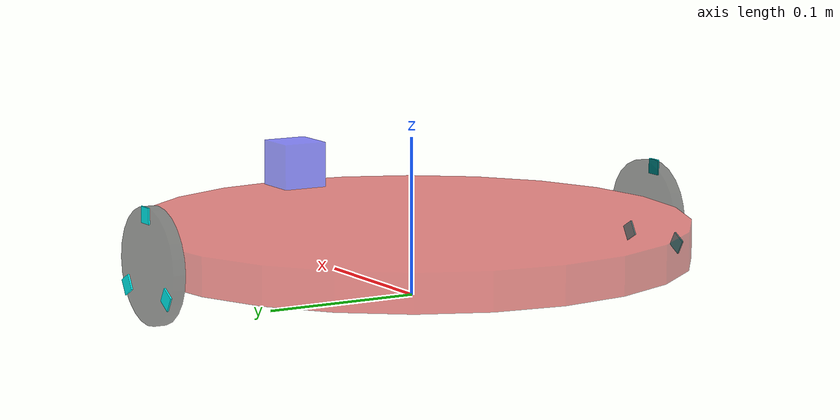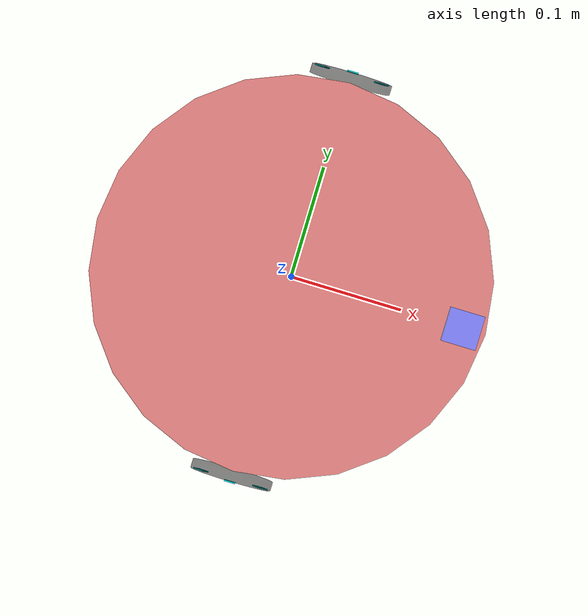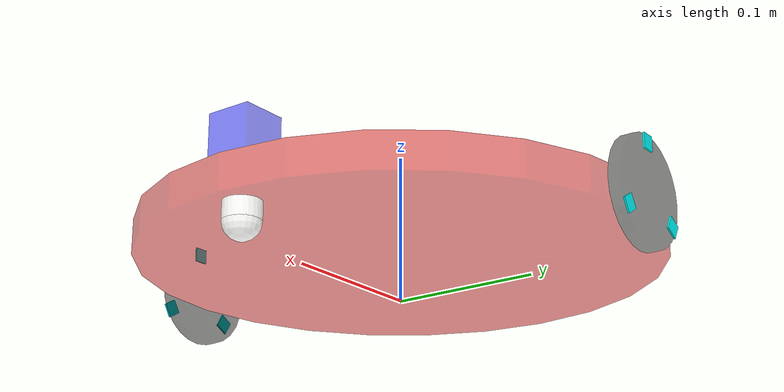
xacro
<?xml version="1.0"?>
<robot name="three_wheeled_car"
    xmlns:xacro="http://www.ros.org/wiki/xacro">

    <xacro:property name="wheel_diameter" value="0.072" />
    <xacro:property name="wheel_length" value="0.008" />
    <xacro:property name="wheel_radius" value="${wheel_diameter/2}" />
    <xacro:property name="base_height" value="${wheel_diameter/3}" />
    <xacro:property name="base_radius" value="0.175" />
    <xacro:property name="indicator_length" value="0.01" />
    <xacro:property name="indicator_depth" value="0.001" />
    <xacro:property name="head_length" value="0.03" />
    <xacro:property name="passive_wheel_radius" value="0.012" />

    <xacro:property name="base_mass" value="0.2" />
    <xacro:property name="head_mass" value="0.02" />
    <xacro:property name="wheel_mass" value="0.025" />
    <xacro:property name="passive_wheel_mass" value="0.01" />
    <xacro:property name="passive_wheel_holder_mass" value="0.015" />

    <xacro:macro name="cylinder_inertia" params="m r h">
        <inertia ixx="${m*(3*r*r + h*h)/12}" ixy="0.0" ixz="0.0" iyy="${m*(3*r*r + h*h)/12}" iyz="0.0" izz="${m*r*r/2}" />
    </xacro:macro>

    <xacro:macro name="sphere_inertia" params="m r">
        <inertia ixx="${m*r*r*2/5}" ixy="0.0" ixz="0.0" iyy="${m*r*r*2/5}" iyz="0.0" izz="${m*r*r*2/5}" />
    </xacro:macro>

    <xacro:macro name="cube_inertia" params="m h">
        <inertia ixx="${m*h*h/6}" ixy="0.0" ixz="0.0" iyy="${m*h*h/6}" iyz="0.0" izz="${m*h*h/6}" />
    </xacro:macro>

    <link name="base_link">
        <visual>
            <geometry>
                <cylinder length="${base_height}" radius="${base_radius}"/>
            </geometry>
            <material name="red">
                <color rgba="0.8 0 0 0.5"/>
            </material>
        </visual>
        <collision>
            <geometry>
                <cylinder length="${base_height}" radius="${base_radius}"/>
            </geometry>
        </collision>
        <inertial>
            <mass value="${base_mass}" />
            <origin rpy="0 0 0" />
            <xacro:cylinder_inertia m="${base_mass}" r="${base_radius}" h="${base_height}" />
        </inertial>
    </link>

    <link name="base_footprint">
    </link>
    <joint name="footprint_to_base" type="fixed">
        <parent link="base_footprint"/>
        <child link="base_link"/>
        <origin xyz="0 0 ${wheel_radius}" rpy="0 0 0"/>
    </joint>

    <xacro:macro name="wheel" params="wheel">
        <link name="${wheel}_wheel">
            <visual>
                <geometry>
                    <cylinder length="${wheel_length}" radius="${wheel_radius}"/>
                </geometry>
                <material name="black">
                    <color rgba="0 0 0 0.5"/>
                </material>
            </visual>
            <collision>
                <geometry>
                    <cylinder length="${wheel_length}" radius="${wheel_radius}"/>
                </geometry>
            </collision>
            <inertial>
                <mass value="${wheel_mass}" />
                <origin rpy="0 0 0" />
                <xacro:cylinder_inertia m="${wheel_mass}" r="${wheel_radius}" h="${wheel_length}" />
            </inertial>
        </link>
    </xacro:macro>

    <xacro:wheel wheel="right"/>
    <xacro:wheel wheel="left"/>

    <xacro:macro name="wheel_joint" params="wheel y">
        <joint name="base_to_${wheel}_wheel" type="continuous">
            <parent link="base_link" />
            <child link="${wheel}_wheel" />
            <origin xyz="0 ${y} 0" rpy="-1.57 0 0" />
            <axis xyz="0 0 1" />
        </joint>
    </xacro:macro>

    <xacro:wheel_joint wheel="right" y="${-(base_radius + wheel_length/2)}" />
    <xacro:wheel_joint wheel="left" y="${base_radius + wheel_length/2}" />

    <link name="head">
        <visual>
            <geometry>
                <box size="${head_length} ${head_length} ${head_length}"/>
            </geometry>
            <material name="blue">
                <color rgba="0 0 1 0.5"/>
            </material>
        </visual>
        <collision>
            <geometry>
                <box size="${head_length} ${head_length} ${head_length}"/>
            </geometry>
        </collision>
        <inertial>
            <mass value="${head_mass}" />
            <origin rpy="0 0 0" />
            <xacro:cube_inertia m="${head_mass}" h="${head_length}" />
        </inertial>
    </link>

    <joint name="base_to_head" type="fixed">
        <parent link="base_link"/>
        <child link="head"/>
        <origin xyz="${base_radius - head_length/2 - head_length/5} 0 ${(base_height + head_length)/2}" rpy="0 0 0"/>
    </joint>

    <link name="passive_wheel_holder">
        <visual>
            <geometry>
                <cylinder length="${base_height - passive_wheel_radius}" radius="${passive_wheel_radius}"/>
            </geometry>
            <material name="white">
                <color rgba="1 1 1 0.5"/>
            </material>
        </visual>
        <collision>
            <geometry>
                <cylinder length="${base_height - passive_wheel_radius}" radius="${passive_wheel_radius}"/>
            </geometry>
        </collision>
        <inertial>
            <mass value="${passive_wheel_holder_mass}" />
            <origin rpy="0 0 0" />
            <xacro:cylinder_inertia m="${passive_wheel_holder_mass}" r="${passive_wheel_radius}" h="${base_height - passive_wheel_radius}" />
        </inertial>
    </link>

    <joint name="base_to_passive_wheel_holder" type="fixed">
        <parent link="base_link"/>
        <child link="passive_wheel_holder"/>
        <origin xyz="${base_radius - head_length/2 - head_length/5} 0 ${-(base_height - passive_wheel_radius/2)}" rpy="0 0 0"/>
    </joint>

    <link name="passive_wheel">
        <visual>
            <geometry>
                <sphere radius="${passive_wheel_radius}"/>
            </geometry>
            <material name="white">
                <color rgba="1 1 1 0.5"/>
            </material>
        </visual>
        <collision>
            <geometry>
                <sphere radius="${passive_wheel_radius}"/>
            </geometry>
        </collision>
        <inertial>
            <mass value="${passive_wheel_mass}" />
            <origin rpy="0 0 0" />
            <xacro:sphere_inertia m="${passive_wheel_mass}" r="${passive_wheel_radius}" />
        </inertial>
    </link>

    <joint name="passive_wheel_holder_to_passive_wheel" type="fixed">
        <parent link="passive_wheel_holder"/>
        <child link="passive_wheel"/>
        <origin xyz="0 0 ${(-(base_height - passive_wheel_radius)/2)}" rpy="0 0 0"/>
    </joint>

    <xacro:macro name="wheel_indicator" params="wheel number">
        <link name="${wheel}_wheel_indicator_${number}">
            <visual>
                <geometry>
                    <box size="${indicator_length} ${indicator_length} ${indicator_depth}"/>
                </geometry>
                <material name="cyan">
                    <color rgba="0 1 1 1" />
                </material>
            </visual>
        </link>
    </xacro:macro>

    <xacro:wheel_indicator wheel="left" number="1" />
    <xacro:wheel_indicator wheel="left" number="2" />
    <xacro:wheel_indicator wheel="left" number="3" />
    <xacro:wheel_indicator wheel="right" number="1" />
    <xacro:wheel_indicator wheel="right" number="2" />
    <xacro:wheel_indicator wheel="right" number="3" />

    <xacro:macro name="wheel_indicator_joint" params="wheel number x y z yaw">
        <joint name="${wheel}_wheel_to_${wheel}_wheel_indicator_${number}" type="fixed">
            <parent link="${wheel}_wheel" />
            <child link="${wheel}_wheel_indicator_${number}" />
            <origin xyz="${x} ${y} ${z}" rpy="0 0 ${yaw}" />
        </joint>
    </xacro:macro>

    <xacro:wheel_indicator_joint wheel="left" number="1" x="0" y="${-(wheel_radius - indicator_length/2)}" z="${wheel_length/2 + indicator_depth/2}" yaw="0" />
    <xacro:wheel_indicator_joint wheel="left" number="2" x="${(wheel_radius - indicator_length/2)*sin(pi/3)}" y="${(wheel_radius - indicator_length/2)*cos(pi/3)}" z="${wheel_length/2 + indicator_depth/2}" yaw="${2*pi/3}" />
    <xacro:wheel_indicator_joint wheel="left" number="3" x="${(wheel_radius - indicator_length/2)*sin(-pi/3)}" y="${(wheel_radius - indicator_length/2)*cos(pi/3)}" z="${wheel_length/2 + indicator_depth/2}" yaw="${-2*pi/3}" />
    <xacro:wheel_indicator_joint wheel="right" number="1" x="0" y="${-(wheel_radius - indicator_length/2)}" z="${-(wheel_length/2 + indicator_depth/2)}" yaw="0" />
    <xacro:wheel_indicator_joint wheel="right" number="2" x="${(wheel_radius - indicator_length/2)*sin(pi/3)}" y="${(wheel_radius - indicator_length/2)*cos(pi/3)}" z="${-(wheel_length/2 + indicator_depth/2)}" yaw="${2*pi/3}" />
    <xacro:wheel_indicator_joint wheel="right" number="3" x="${(wheel_radius - indicator_length/2)*sin(-pi/3)}" y="${(wheel_radius - indicator_length/2)*cos(pi/3)}" z="${-(wheel_length/2 + indicator_depth/2)}" yaw="${-2*pi/3}" />

</robot>
